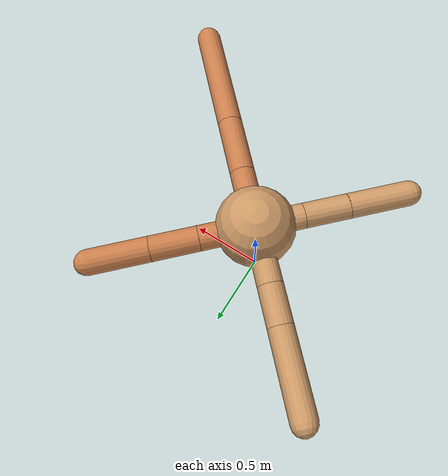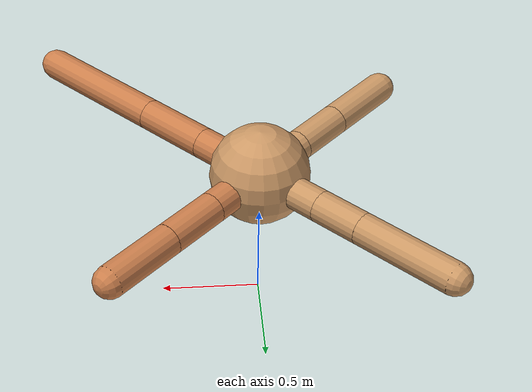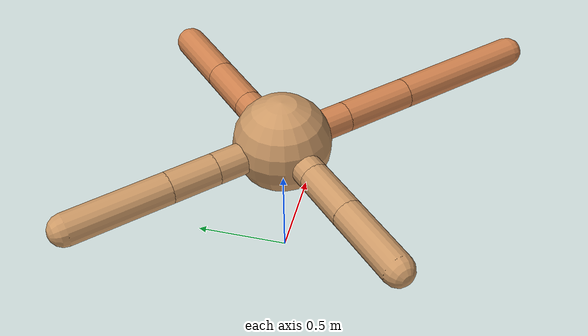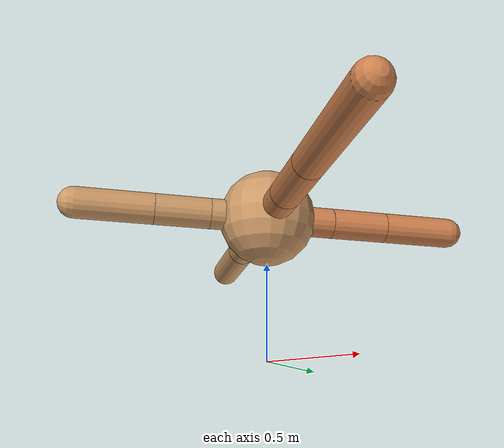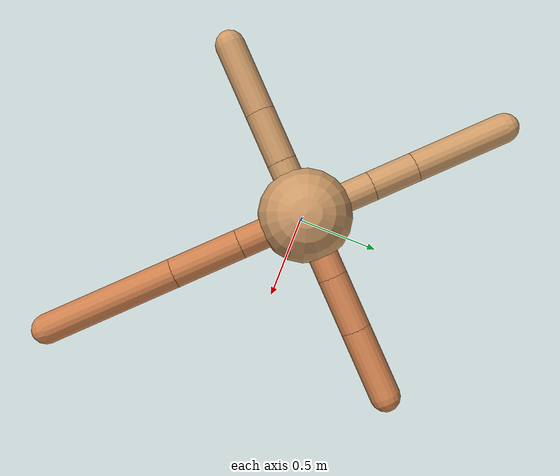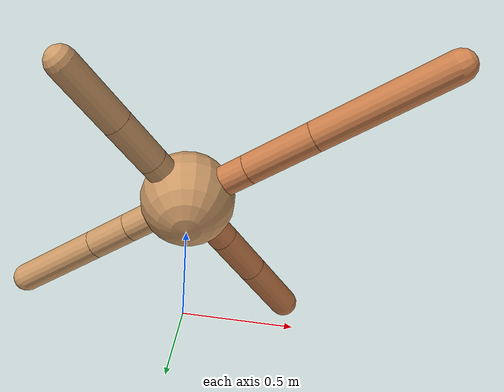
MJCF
<mujoco model="ant">
  <compiler angle="degree" coordinate="local" inertiafromgeom="true" />
  <option integrator="RK4" timestep="0.01" />
  <custom>
    <numeric data="0.0 0.0 0.55 1.0 0.0 0.0 0.0 0.0 1.0 0.0 -1.0 0.0 -1.0 0.0 1.0" name="init_qpos" />
  </custom>
  <default>
    <joint armature="1" damping="1" limited="true" />
    <geom conaffinity="0" condim="3" density="5.0" friction="1.5 0.1 0.1" margin="0.01" rgba="0.8 0.6 0.4 1" />
  </default>
  <worldbody>
    <body name="torso" pos="0 0 0.75">
      <geom name="torso_geom" pos="0 0 0" size="0.25" type="sphere" />

      <body name="front_left_leg" pos="0 0 0">
        <geom fromto="0.0 0.0 0.0 0.24773314469716112 0.24773314469716112 0.0" name="aux_1_geom" size="0.08" type="capsule" rgba=".8 .5 .3 1" />
        <body name="aux_1" pos="0.24773314469716112 0.24773314469716112 0.0">
          <joint axis="0 0 1" name="hip_1" pos="0.0 0.0 0.0" range="-40 40" type="hinge" />
          <geom fromto="0.0 0.0 0.0 0.21099675304071286 0.21099675304071286 0.0" name="left_leg_geom" size="0.08" type="capsule" rgba=".8 .5 .3 1" />
          <body pos="0.21099675304071286 0.21099675304071286 0.0" name="front_left_foot">
            <joint axis="-1 1 0" name="ankle_1" pos="0.0 0.0 0.0" range="30 100" type="hinge" />
            <geom fromto="0.0 0.0 0.0 0.26510581366627534 0.26510581366627534 0.0" name="left_ankle_geom" size="0.08" type="capsule" rgba=".8 .5 .3 1" />
          </body>
        </body>
      </body>
      <body name="front_right_leg" pos="0 0 0">
        <geom fromto="0.0 0.0 0.0 -0.2677558291208966 0.2677558291208966 0.0" name="aux_2_geom" size="0.08" type="capsule" />
        <body name="aux_2" pos="-0.2677558291208966 0.2677558291208966 0.0">
          <joint axis="0 0 1" name="hip_2" pos="0.0 0.0 0.0" range="-40 40" type="hinge" />
          <geom fromto="0.0 0.0 0.0 -0.17351271385554948 0.17351271385554948 0.0" name="right_leg_geom" size="0.08" type="capsule" />
          <body pos="-0.17351271385554948 0.17351271385554948 0.0" name="front_right_foot">
            <joint axis="1 1 0" name="ankle_2" pos="0.0 0.0 0.0" range="-100 -30" type="hinge" />
            <geom fromto="0.0 0.0 0.0 -0.3634753159469219 0.3634753159469219 0.0" name="right_ankle_geom" size="0.08" type="capsule" />
          </body>
        </body>
      </body>
      <body name="left_back_leg" pos="0 0 0">
        <geom fromto="0.0 0.0 0.0 -0.21499728548515434 -0.21499728548515434 0.0" name="aux_3_geom" size="0.08" type="capsule" />
        <body name="aux_3" pos="-0.21499728548515434 -0.21499728548515434 0.0">
          <joint axis="0 0 1" name="hip_3" pos="0.0 0.0 0.0" range="-40 40" type="hinge" />
          <geom fromto="0.0 0.0 0.0 -0.20176562588753597 -0.20176562588753597 0.0" name="back_leg_geom" size="0.08" type="capsule" />
          <body pos="-0.20176562588753597 -0.20176562588753597 0.0" name="left_back_foot">
            <joint axis="-1 1 0" name="ankle_3" pos="0.0 0.0 0.0" range="-100 -30" type="hinge" />
            <geom fromto="0.0 0.0 0.0 -0.2770461238369791 -0.2770461238369791 0.0" name="third_ankle_geom" size="0.08" type="capsule" />
          </body>
        </body>
      </body>
      <body name="right_back_leg" pos="0 0 0">
        <geom fromto="0.0 0.0 0.0 0.2635517954204024 -0.2635517954204024 0.0" name="aux_4_geom" size="0.08" type="capsule" rgba=".8 .5 .3 1" />
        <body name="aux_4" pos="0.2635517954204024 -0.2635517954204024 0.0">
          <joint axis="0 0 1" name="hip_4" pos="0.0 0.0 0.0" range="-40 40" type="hinge" />
          <geom fromto="0.0 0.0 0.0 0.2646961313198876 -0.2646961313198876 0.0" name="rightback_leg_geom" size="0.08" type="capsule" rgba=".8 .5 .3 1" />
          <body pos="0.2646961313198876 -0.2646961313198876 0.0" name="right_back_foot">
            <joint axis="1 1 0" name="ankle_4" pos="0.0 0.0 0.0" range="30 100" type="hinge" />
            <geom fromto="0.0 0.0 0.0 0.5078430979847667 -0.5078430979847667 0.0" name="fourth_ankle_geom" size="0.08" type="capsule" rgba=".8 .5 .3 1" />
          </body>
        </body>
      </body>
    </body>
  </worldbody>
  <actuator>
    <motor ctrllimited="true" ctrlrange="-1.0 1.0" joint="hip_4" gear="150" />
    <motor ctrllimited="true" ctrlrange="-1.0 1.0" joint="ankle_4" gear="150" />
    <motor ctrllimited="true" ctrlrange="-1.0 1.0" joint="hip_1" gear="150" />
    <motor ctrllimited="true" ctrlrange="-1.0 1.0" joint="ankle_1" gear="150" />
    <motor ctrllimited="true" ctrlrange="-1.0 1.0" joint="hip_2" gear="150" />
    <motor ctrllimited="true" ctrlrange="-1.0 1.0" joint="ankle_2" gear="150" />
    <motor ctrllimited="true" ctrlrange="-1.0 1.0" joint="hip_3" gear="150" />
    <motor ctrllimited="true" ctrlrange="-1.0 1.0" joint="ankle_3" gear="150" />
  </actuator>
</mujoco>
